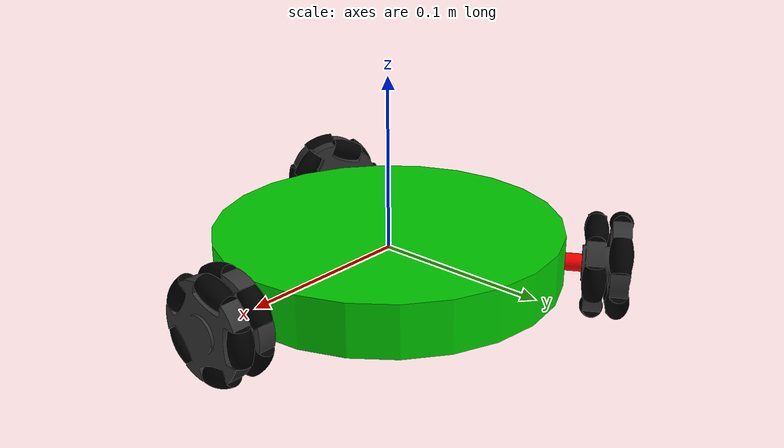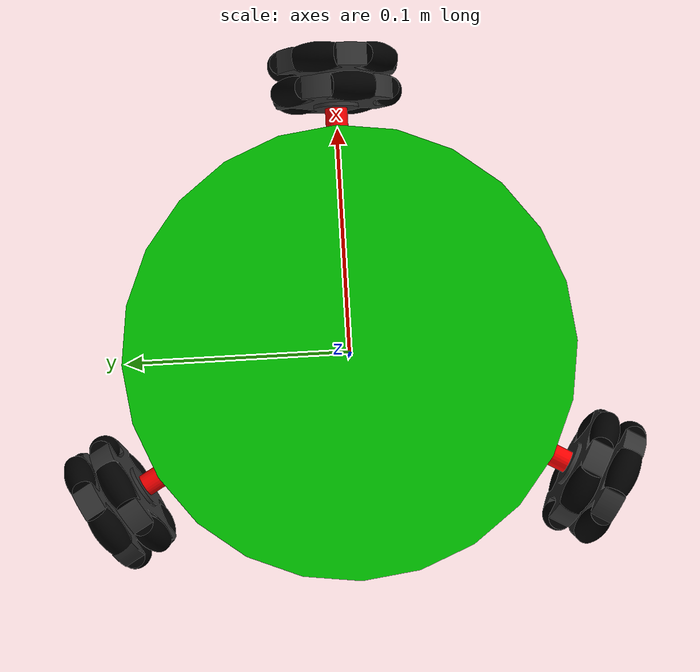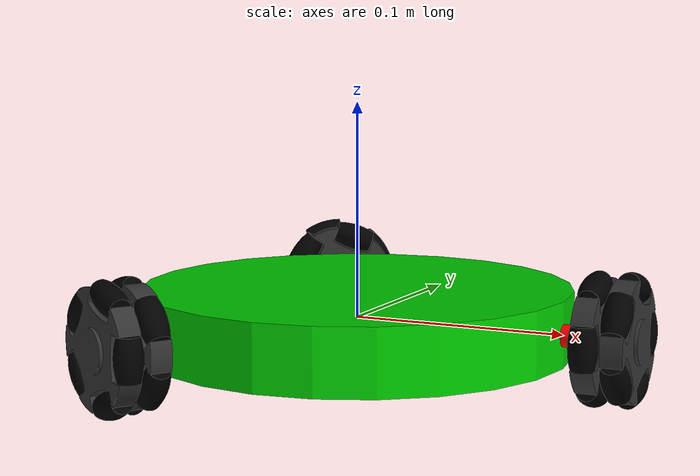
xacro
<?xml version="1.0"?>
<robot xmlns:xacro="http://www.ros.org/wiki/xacro" name="vektor">

    <xacro:include filename="constants.xacro"/>

    <xacro:include filename="inertial_macros.xacro"/>

    <xacro:include filename="materials.xacro"/>

    <xacro:include filename="make_omniwheel_macro.xacro"/>

    <xacro:include filename="insert_roller_macro.xacro"/>

    <!-- BASE LINK-->

    <link name="base_link">

    </link>

    <!-- CHASSIS LINK-->

    <joint name="chassis_joint" type="fixed">
        <parent link="base_link" />
        <child link="chassis_link" />
        <origin xyz="0.0 0.0 0.0" rpy="0.0 0.0 0.0" />
    </joint>

    <link name="chassis_link">
        <visual>
            <origin xyz="0.0 0.0 0.0" rpy="0.0 0.0 0.0" />
            <geometry>
                <cylinder radius="${chassis_cyl_radius}" length="${chassis_cyl_height}" />
            </geometry>
            <material name="green" />
        </visual>
        <collision>
            <origin xyz="0.0 0.0 0.0" rpy="0.0 0.0 0.0" />
            <geometry>
                <cylinder radius="${chassis_cyl_radius}" length="${chassis_cyl_height}" />
            </geometry>
        </collision>
        <xacro:inertial_cylinder mass="${chassis_cyl_mass}" radius="${chassis_cyl_radius}" length="${chassis_cyl_height}">
            <origin xyz="0.0 0.0 0.0" rpy="0.0 0.0 0.0" />
        </xacro:inertial_cylinder>
    </link>

    <!-- DRIVE WHEEL LINKS-->

    <xacro:make_omniwheel parent="chassis_link" id="1" theta="0" />
    <xacro:make_omniwheel parent="chassis_link" id="2" theta="${2*PI/3}" />
    <xacro:make_omniwheel parent="chassis_link" id="3" theta="-${2*PI/3}" />

</robot>

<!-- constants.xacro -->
<robot xmlns:xacro="http://www.ros.org/wiki/xacro" name="axebot">

    <xacro:property name="PI" value="3.141592653589793"/>

    <xacro:property name="motor_shaft_length" value="0.01"/> <!-- 10mm--> <!-- random made up value CHANGE ME-->
    <xacro:property name="motor_shaft_radius" value="0.005"/> <!-- 5mm-->
    <xacro:property name="motor_shaft_mass" value="0.001"/> <!-- 1gm-->

    <xacro:property name="wheel_rim_thickness" value="0.025"/> <!-- 25mm-->
    <xacro:property name="wheel_rim_radius" value="0.027"/> <!-- 27mm-->
    <xacro:property name="wheel_rim_mass" value="0.1"/> <!-- CHANGE ME-->

    <xacro:property name="distance_to_roller_center" value="0.02332"/> <!-- 23.32mm-->
    <xacro:property name="roller_z_offset" value="0.00665"/> <!-- 6.65mm-->

    <xacro:property name="chassis_cyl_mass" value="0.3" />
    <xacro:property name="chassis_cyl_radius" value="0.1" />
    <xacro:property name="chassis_cyl_height" value="0.03" />

</robot>

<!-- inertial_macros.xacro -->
<robot xmlns:xacro="http://www.ros.org/wiki/xacro" >

    <!-- Specify some standard inertial calculations https://en.wikipedia.org/wiki/List_of_moments_of_inertia -->
    <!-- These make use of xacro's mathematical functionality -->

    <xacro:macro name="inertial_sphere" params="mass radius *origin">
        <inertial>
            <xacro:insert_block name="origin"/>
            <mass value="${mass}" />
            <inertia
                ixx="${(2/5) * mass * (radius*radius)}" ixy="0.0" ixz="0.0"
                iyy="${(2/5) * mass * (radius*radius)}" iyz="0.0"
                izz="${(2/5) * mass * (radius*radius)}" />
        </inertial>
    </xacro:macro>

    <xacro:macro name="inertial_box" params="mass x y z *origin">
        <inertial>
            <xacro:insert_block name="origin"/>
            <mass value="${mass}" />
            <inertia
                ixx="${(1/12) * mass * (y*y+z*z)}" ixy="0.0" ixz="0.0"
                iyy="${(1/12) * mass * (x*x+z*z)}" iyz="0.0"
                izz="${(1/12) * mass * (x*x+y*y)}" />
        </inertial>
    </xacro:macro>

    <xacro:macro name="inertial_cylinder" params="mass length radius *origin">
        <inertial>
            <xacro:insert_block name="origin"/>
            <mass value="${mass}" />
            <inertia
                ixx="${(1/12) * mass * (3*radius*radius + length*length)}" ixy="0.0" ixz="0.0"
                iyy="${(1/12) * mass * (3*radius*radius + length*length)}" iyz="0.0"
                izz="${(1/2) * mass * (radius*radius)}" />
        </inertial>
    </xacro:macro>

</robot>

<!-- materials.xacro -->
<robot xmlns:xacro="http://www.ros.org/wiki/xacro" name="axebot">
  <material name="green">
    <color rgba="0.0 0.8 0.0 1.0"/>
  </material>

  <material name="black">
    <color rgba="0.0 0.0 0.0 1.0"/>
  </material>

  <material name="grey">
    <color rgba="0.2 0.2 0.2 1.0"/>
  </material>

  <material name="red">
    <color rgba="1.0 0.0 0.0 1.0"/>
  </material>

  <material name="white">
    <color rgba="1.0 1.0 1.0 1.0" />
  </material>

  <material name="orange">
      <color rgba="1.0 0.3 0.1 1.0" />
  </material>
</robot>

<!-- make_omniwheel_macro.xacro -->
<robot xmlns:xacro="http://www.ros.org/wiki/xacro">

    <!-- the following macro basically makes the wheel i.e. creates the central disc and then uses the above insert roller macro to individually insert rollers-->

    <xacro:macro name="make_omniwheel" params="parent id theta">

        <!-- MOTOR SHAFT LINK-->

        <joint name="motor${id}_shaft_joint" type="fixed">
            <origin xyz="${chassis_cyl_radius*cos(theta)} ${chassis_cyl_radius*sin(theta)} 0.0" rpy="${PI/2} 0.0 ${theta-PI/2}"/>
            <parent link="${parent}"/>
            <child link="motor${id}_shaft_link"/>
        </joint>

        <link name="motor${id}_shaft_link">
            <visual>
                <origin xyz="0.0 0.0 -${motor_shaft_length/2}" rpy="0.0 0.0 0.0"/>
                <geometry>
                    <cylinder radius="${motor_shaft_radius}" length="${motor_shaft_length}"/>
                </geometry>
                <material name="red"/>
            </visual>

            <collision>
                <origin xyz="0.0 0.0 -${motor_shaft_length/2}" rpy="0.0 0.0 0.0"/>
                <geometry>
                    <cylinder radius="${motor_shaft_radius}" length="${motor_shaft_length}"/>
                </geometry>
            </collision>
            <xacro:inertial_cylinder mass="${motor_shaft_mass}" radius="${motor_shaft_radius}" length="${motor_shaft_length}">
                <origin xyz="0.0 0.0 -${motor_shaft_length/2}" rpy="0.0 0.0 0.0"/>
            </xacro:inertial_cylinder>
        </link>

        <!-- WHEEL LINK-->

        <joint name="wheel${id}_joint" type="continuous">
            <origin xyz="0.0 0.0 -${motor_shaft_length+wheel_rim_thickness/2}" rpy="0.0 0.0 0.0"/>
            <parent link="motor${id}_shaft_link"/>
            <child link="wheel${id}_link"/>
            <axis xyz="0.0 0.0 1.0"/>
        </joint>

        <link name="wheel${id}_link">
            <visual>
                <origin xyz="0.0 0.0 0.0" rpy="0.0 0.0 0.0"/>
                <geometry>
                    <mesh filename="file://$(find vektor)/meshes/wheel_rim_simplified.dae"/>
                </geometry>
                <material name="grey"/>
            </visual>

            <collision>
                <origin xyz="0.0 0.0 0.0" rpy="0.0 0.0 0.0"/>
                <geometry>
                    <cylinder radius="${wheel_rim_radius}" length="${wheel_rim_thickness}"/>
                </geometry>
            </collision>
            <xacro:inertial_cylinder mass="${wheel_rim_mass}" radius="${wheel_rim_radius}" length="${wheel_rim_thickness}">
                <origin xyz="0.0 0.0 -${motor_shaft_length/2}" rpy="0.0 0.0 0.0"/>
            </xacro:inertial_cylinder>
        </link>

        <xacro:insert_roller parent="wheel${id}_link" reflect="1.0" theta="${0}" suffix="1" wheel_num="${id}"/>
        <xacro:insert_roller parent="wheel${id}_link" reflect="1.0" theta="${2*PI/5}" suffix="2" wheel_num="${id}"/>
        <xacro:insert_roller parent="wheel${id}_link" reflect="1.0" theta="${4*PI/5}" suffix="3" wheel_num="${id}"/>
        <xacro:insert_roller parent="wheel${id}_link" reflect="1.0" theta="${6*PI/5}" suffix="4" wheel_num="${id}"/>
        <xacro:insert_roller parent="wheel${id}_link" reflect="1.0" theta="${8*PI/5}" suffix="5" wheel_num="${id}"/>

        <xacro:insert_roller parent="wheel${id}_link" reflect="-1.0" theta="${1*PI/5}" suffix="-1" wheel_num="${id}"/>
        <xacro:insert_roller parent="wheel${id}_link" reflect="-1.0" theta="${3*PI/5}" suffix="-2" wheel_num="${id}"/>
        <xacro:insert_roller parent="wheel${id}_link" reflect="-1.0" theta="${PI}" suffix="-3" wheel_num="${id}"/>
        <xacro:insert_roller parent="wheel${id}_link" reflect="-1.0" theta="${7*PI/5}" suffix="-4" wheel_num="${id}"/>
        <xacro:insert_roller parent="wheel${id}_link" reflect="-1.0" theta="${9*PI/5}" suffix="-5" wheel_num="${id}"/>
    </xacro:macro>

</robot>

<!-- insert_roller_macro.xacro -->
<robot xmlns:xacro="http://www.ros.org/wiki/xacro" >

    <!-- the following macro when called basically inserts a roller into the wheel at specified position-->

    <xacro:include filename="constants.xacro"/>

    <xacro:macro name="insert_roller" params="parent reflect theta suffix wheel_num">
        <joint name="wheel_${wheel_num}_roller_${suffix}_joint" type="continuous">
            <origin xyz="${distance_to_roller_center*cos(theta)} ${distance_to_roller_center*sin(theta)} ${reflect*roller_z_offset}" rpy="0.0 0.0 ${theta}" />
            <parent link="${parent}"/>
            <child link="wheel_${wheel_num}_roller_${suffix}_link"/>
            <axis xyz="0.0 1.0 0.0"/>
            <dynamics friction="0.1"/>
        </joint>

        <link name="wheel_${wheel_num}_roller_${suffix}_link">
            <visual>
                <origin xyz="0.0 0.0 0.0" rpy="0.0 0.0 0.0"/>
                <geometry>
                    <mesh filename="file://$(find vektor)/meshes/roller_simplified.dae"/>
                </geometry>
                <material name="black"/>
            </visual>

            <collision>
                <origin xyz="0.0 0.0 0.0" rpy="0.0 0.0 0.0"/>
                <geometry>
                    <mesh filename="file://$(find vektor)/meshes/roller_simplified.dae"/>
                </geometry>
            </collision>

            <inertial>
                <origin xyz="0.0 0.0 0.0" rpy="0.0 0.0 0.0"/>
                <mass value="0.003"/>
                <inertia ixx="5.3e-8"
                         ixy="0.0"
                         ixz="0.0"
                         iyy="8e-8"
                         iyz="0.0"
                         izz="8e-8"/>
            </inertial>
        </link>
        <gazebo reference="wheel_${wheel_num}_roller_${suffix}_link">
            <material>Gazebo/Green</material>
            <fdir1>0 1 0"</fdir1>
            <mu1>100</mu1>
            <mu2>100</mu2>
            <minDepth>0.001</minDepth>
        </gazebo>
    </xacro:macro>

</robot>
